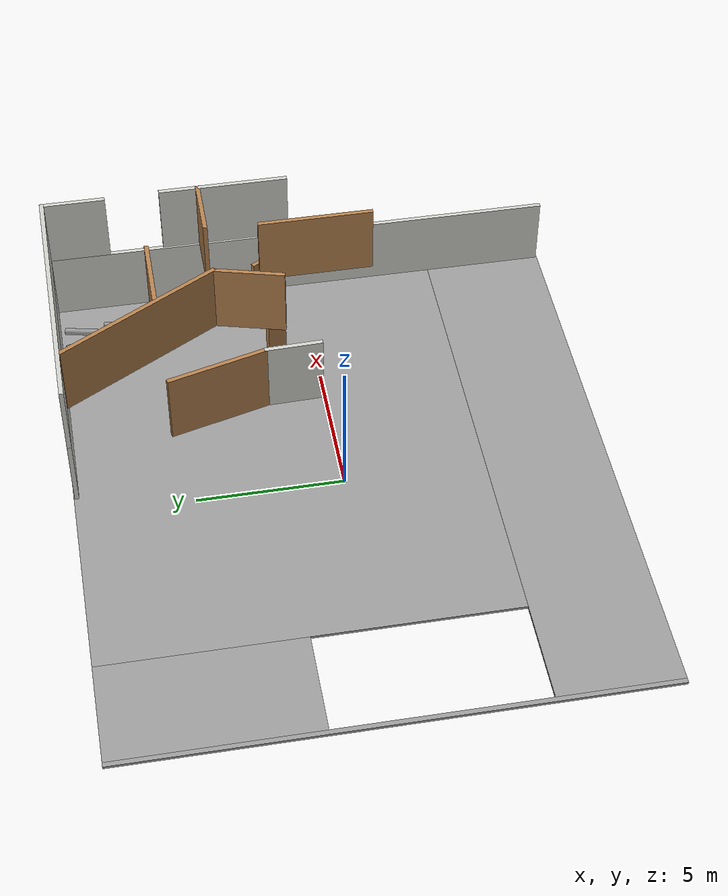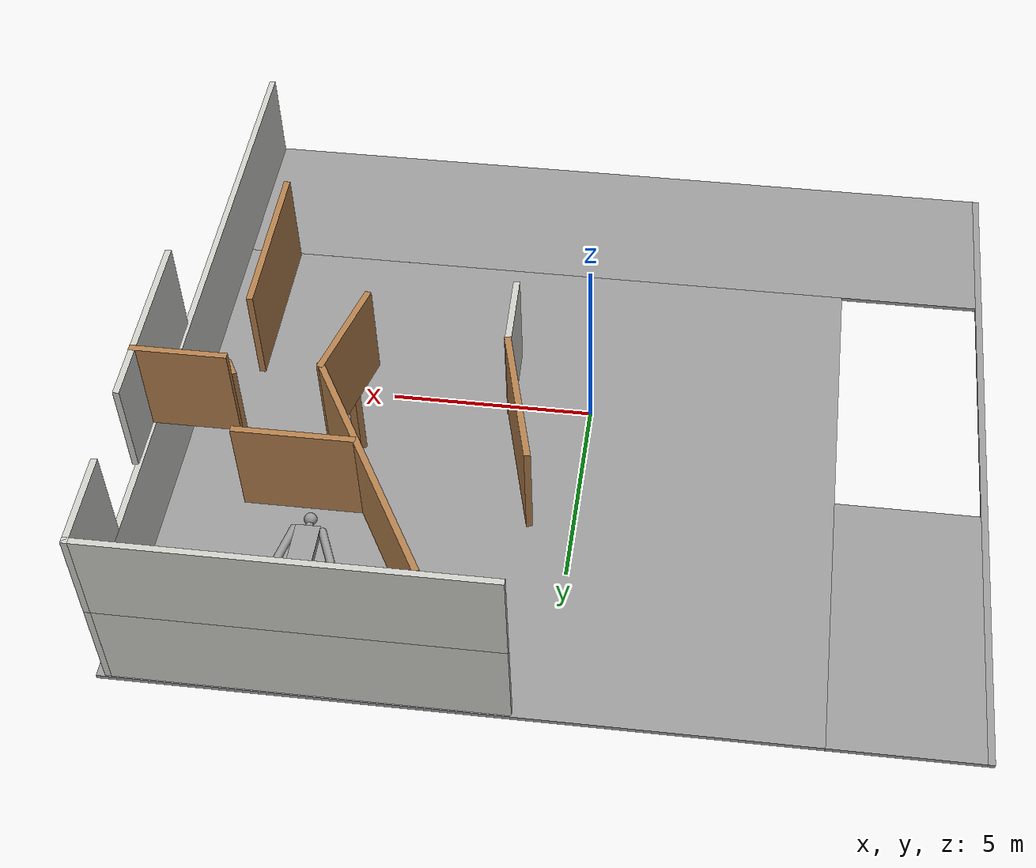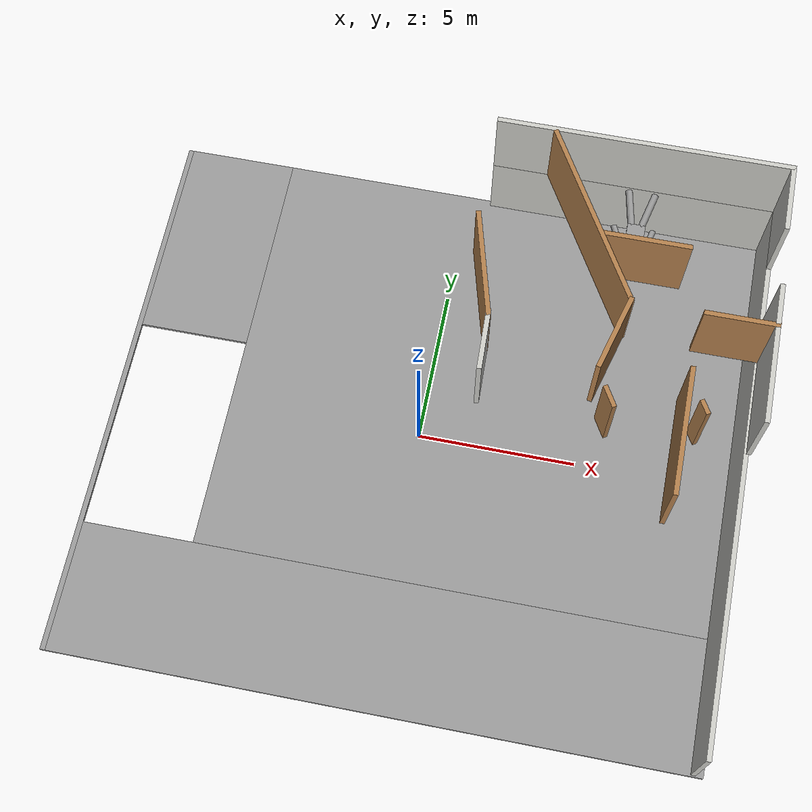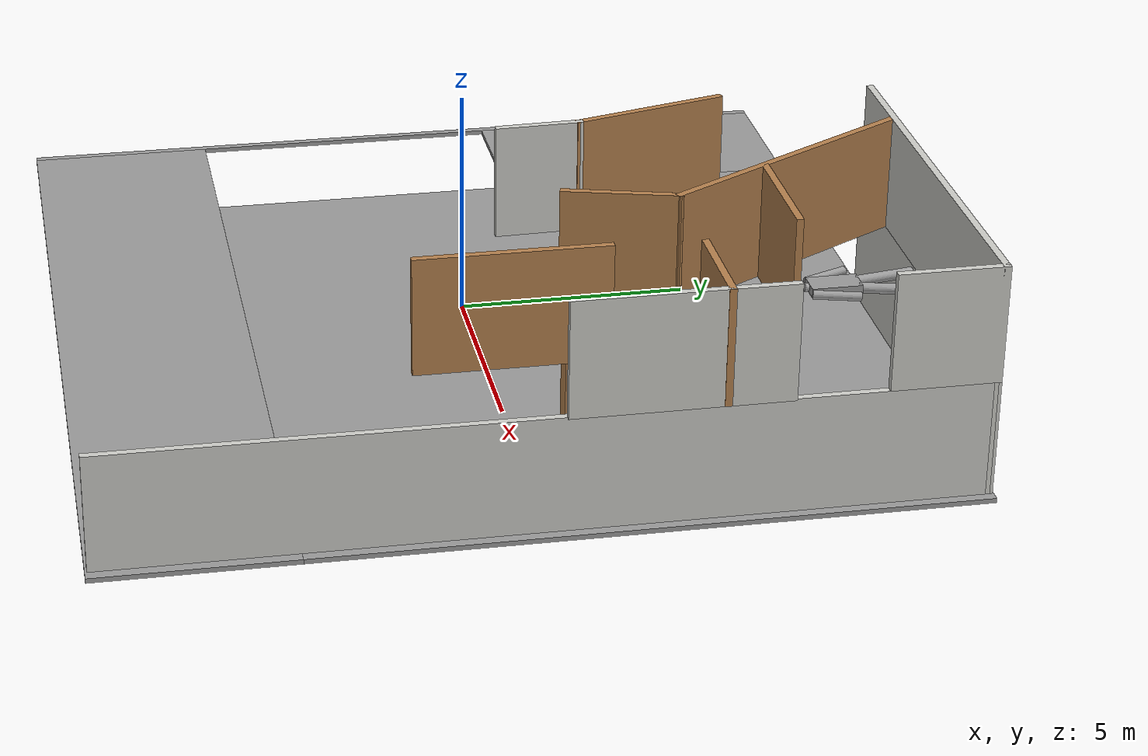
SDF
<sdf version="1.6">
 <model name="home_human">
  <link name="Floor_1_clone">
   <pose>0.151523 0.015351 -0.092874 0 -0 0</pose>
   <visual name="Floor_1_Visual_2">
    <pose>1.84664 2.07713 0.05 0 -0 0</pose>
    <geometry><box><size>16.4027 13.8033 0.1</size></box></geometry>
    <material>
     <script><uri>file://media/materials/scripts/gazebo.material</uri><name>Gazebo/Grey</name></script>
     <ambient>1 1 1 1</ambient>
     <shader type="pixel"/>
    </material>
    <meta><layer>1</layer></meta>
   </visual>
   <visual name="Floor_1_Visual_0">
    <pose>-9.96633 0 0.05 0 -0 0</pose>
    <geometry><box><size>0.163285 17.9576 0.1</size></box></geometry>
    <material>
     <script><uri>file://media/materials/scripts/gazebo.material</uri><name>Gazebo/Grey</name></script>
     <ambient>1 1 1 1</ambient>
     <shader type="pixel"/>
    </material>
    <meta><layer>1</layer></meta>
   </visual>
   <visual name="Floor_1_Visual_3">
    <pose>-8.11969 5.56778 0.05 0 -0 0</pose>
    <geometry><box><size>3.53 6.82204 0.1</size></box></geometry>
    <material>
     <script><uri>file://media/materials/scripts/gazebo.material</uri><name>Gazebo/Grey</name></script>
     <ambient>1 1 1 1</ambient>
     <shader type="pixel"/>
    </material>
    <meta><layer>1</layer></meta>
   </visual>
   <visual name="Floor_1_Visual_1">
    <pose>0.081642 -6.90167 0.05 0 -0 0</pose>
    <geometry><box><size>19.9327 4.15425 0.1</size></box></geometry>
    <material>
     <script><uri>file://media/materials/scripts/gazebo.material</uri><name>Gazebo/Grey</name></script>
     <ambient>1 1 1 1</ambient>
     <shader type="pixel"/>
    </material>
    <meta><layer>1</layer></meta>
   </visual>
   <collision name="Floor_1_Collision_2">
    <pose>1.84664 2.07713 0.05 0 -0 0</pose>
    <geometry><box><size>16.4027 13.8033 0.1</size></box></geometry>
    <surface>
     <friction>
      <ode><mu>1</mu><mu2>1</mu2><fdir1>0 0 0</fdir1><slip1>0</slip1><slip2>0</slip2></ode>
      <torsional>
       <coefficient>1</coefficient>
       <patch_radius>0</patch_radius>
       <surface_radius>0</surface_radius>
       <use_patch_radius>1</use_patch_radius>
       <ode><slip>0</slip></ode>
      </torsional>
     </friction>
     <bounce><restitution_coefficient>0</restitution_coefficient><threshold>1e+06</threshold></bounce>
     <contact>
      <collide_without_contact>0</collide_without_contact>
      <collide_without_contact_bitmask>1</collide_without_contact_bitmask>
      <collide_bitmask>1</collide_bitmask>
      <ode>
       <soft_cfm>0</soft_cfm>
       <soft_erp>0.2</soft_erp>
       <kp>1e+13</kp>
       <kd>1</kd>
       <max_vel>0.01</max_vel>
       <min_depth>0</min_depth>
      </ode>
      <bullet>
       <split_impulse>1</split_impulse>
       <split_impulse_penetration_threshold>-0.01</split_impulse_penetration_threshold>
       <soft_cfm>0</soft_cfm>
       <soft_erp>0.2</soft_erp>
       <kp>1e+13</kp>
       <kd>1</kd>
      </bullet>
     </contact>
    </surface>
   </collision>
   <collision name="Floor_1_Collision_1">
    <pose>0.081642 -6.90167 0.05 0 -0 0</pose>
    <geometry><box><size>19.9327 4.15425 0.1</size></box></geometry>
    <surface>
     <friction>
      <ode><mu>1</mu><mu2>1</mu2><fdir1>0 0 0</fdir1><slip1>0</slip1><slip2>0</slip2></ode>
      <torsional>
       <coefficient>1</coefficient>
       <patch_radius>0</patch_radius>
       <surface_radius>0</surface_radius>
       <use_patch_radius>1</use_patch_radius>
       <ode><slip>0</slip></ode>
      </torsional>
     </friction>
     <bounce><restitution_coefficient>0</restitution_coefficient><threshold>1e+06</threshold></bounce>
     <contact>
      <collide_without_contact>0</collide_without_contact>
      <collide_without_contact_bitmask>1</collide_without_contact_bitmask>
      <collide_bitmask>1</collide_bitmask>
      <ode>
       <soft_cfm>0</soft_cfm>
       <soft_erp>0.2</soft_erp>
       <kp>1e+13</kp>
       <kd>1</kd>
       <max_vel>0.01</max_vel>
       <min_depth>0</min_depth>
      </ode>
      <bullet>
       <split_impulse>1</split_impulse>
       <split_impulse_penetration_threshold>-0.01</split_impulse_penetration_threshold>
       <soft_cfm>0</soft_cfm>
       <soft_erp>0.2</soft_erp>
       <kp>1e+13</kp>
       <kd>1</kd>
      </bullet>
     </contact>
    </surface>
   </collision>
   <collision name="Floor_1_Collision_0">
    <pose>-9.96633 0 0.05 0 -0 0</pose>
    <geometry><box><size>0.163285 17.9576 0.1</size></box></geometry>
    <surface>
     <friction>
      <ode><mu>1</mu><mu2>1</mu2><fdir1>0 0 0</fdir1><slip1>0</slip1><slip2>0</slip2></ode>
      <torsional>
       <coefficient>1</coefficient>
       <patch_radius>0</patch_radius>
       <surface_radius>0</surface_radius>
       <use_patch_radius>1</use_patch_radius>
       <ode><slip>0</slip></ode>
      </torsional>
     </friction>
     <bounce><restitution_coefficient>0</restitution_coefficient><threshold>1e+06</threshold></bounce>
     <contact>
      <collide_without_contact>0</collide_without_contact>
      <collide_without_contact_bitmask>1</collide_without_contact_bitmask>
      <collide_bitmask>1</collide_bitmask>
      <ode>
       <soft_cfm>0</soft_cfm>
       <soft_erp>0.2</soft_erp>
       <kp>1e+13</kp>
       <kd>1</kd>
       <max_vel>0.01</max_vel>
       <min_depth>0</min_depth>
      </ode>
      <bullet>
       <split_impulse>1</split_impulse>
       <split_impulse_penetration_threshold>-0.01</split_impulse_penetration_threshold>
       <soft_cfm>0</soft_cfm>
       <soft_erp>0.2</soft_erp>
       <kp>1e+13</kp>
       <kd>1</kd>
      </bullet>
     </contact>
    </surface>
   </collision>
   <collision name="Floor_1_Collision_3">
    <pose>-8.11969 5.56778 0.05 0 -0 0</pose>
    <geometry><box><size>3.53 6.82204 0.1</size></box></geometry>
    <surface>
     <friction>
      <ode><mu>1</mu><mu2>1</mu2><fdir1>0 0 0</fdir1><slip1>0</slip1><slip2>0</slip2></ode>
      <torsional>
       <coefficient>1</coefficient>
       <patch_radius>0</patch_radius>
       <surface_radius>0</surface_radius>
       <use_patch_radius>1</use_patch_radius>
       <ode><slip>0</slip></ode>
      </torsional>
     </friction>
     <bounce><restitution_coefficient>0</restitution_coefficient><threshold>1e+06</threshold></bounce>
     <contact>
      <collide_without_contact>0</collide_without_contact>
      <collide_without_contact_bitmask>1</collide_without_contact_bitmask>
      <collide_bitmask>1</collide_bitmask>
      <ode>
       <soft_cfm>0</soft_cfm>
       <soft_erp>0.2</soft_erp>
       <kp>1e+13</kp>
       <kd>1</kd>
       <max_vel>0.01</max_vel>
       <min_depth>0</min_depth>
      </ode>
      <bullet>
       <split_impulse>1</split_impulse>
       <split_impulse_penetration_threshold>-0.01</split_impulse_penetration_threshold>
       <soft_cfm>0</soft_cfm>
       <soft_erp>0.2</soft_erp>
       <kp>1e+13</kp>
       <kd>1</kd>
      </bullet>
     </contact>
    </surface>
   </collision>
  </link>
  <link name="Wall_101">
   <pose>1.19673 3.87559 2.5 0 0 -1.30902</pose>
   <visual name="Wall_101_Visual">
    <pose>0 0 1.25 0 -0 0</pose>
    <geometry><box><size>3.5 0.15 2.5</size></box></geometry>
    <material>
     <script><uri>file://media/materials/scripts/gazebo.material</uri><name>Gazebo/Wood</name></script>
     <ambient>1 1 1 1</ambient>
     <shader type="pixel"/>
    </material>
    <meta><layer>1</layer></meta>
   </visual>
   <collision name="Wall_101_Collision">
    <pose>0 0 1.25 0 -0 0</pose>
    <geometry><box><size>3.5 0.15 2.5</size></box></geometry>
    <surface>
     <friction>
      <ode><mu>1</mu><mu2>1</mu2><fdir1>0 0 0</fdir1><slip1>0</slip1><slip2>0</slip2></ode>
      <torsional>
       <coefficient>1</coefficient>
       <patch_radius>0</patch_radius>
       <surface_radius>0</surface_radius>
       <use_patch_radius>1</use_patch_radius>
       <ode><slip>0</slip></ode>
      </torsional>
     </friction>
     <bounce><restitution_coefficient>0</restitution_coefficient><threshold>1e+06</threshold></bounce>
     <contact>
      <collide_without_contact>0</collide_without_contact>
      <collide_without_contact_bitmask>1</collide_without_contact_bitmask>
      <collide_bitmask>1</collide_bitmask>
      <ode>
       <soft_cfm>0</soft_cfm>
       <soft_erp>0.2</soft_erp>
       <kp>1e+13</kp>
       <kd>1</kd>
       <max_vel>0.01</max_vel>
       <min_depth>0</min_depth>
      </ode>
      <bullet>
       <split_impulse>1</split_impulse>
       <split_impulse_penetration_threshold>-0.01</split_impulse_penetration_threshold>
       <soft_cfm>0</soft_cfm>
       <soft_erp>0.2</soft_erp>
       <kp>1e+13</kp>
       <kd>1</kd>
      </bullet>
     </contact>
    </surface>
   </collision>
  </link>
  <link name="Wall_105">
   <pose>9.92223 7.84259 2.5 0 0 -1.5708</pose>
   <visual name="Wall_105_Visual">
    <pose>0 0 1.25 0 -0 0</pose>
    <geometry><box><size>2.25 0.15 2.5</size></box></geometry>
    <material>
     <script><uri>file://media/materials/scripts/gazebo.material</uri><name>Gazebo/CeilingTiled</name></script>
     <ambient>1 1 1 1</ambient>
     <shader type="pixel"/>
    </material>
    <meta><layer>1</layer></meta>
   </visual>
   <collision name="Wall_105_Collision">
    <pose>0 0 1.25 0 -0 0</pose>
    <geometry><box><size>2.25 0.15 2.5</size></box></geometry>
    <surface>
     <friction>
      <ode><mu>1</mu><mu2>1</mu2><fdir1>0 0 0</fdir1><slip1>0</slip1><slip2>0</slip2></ode>
      <torsional>
       <coefficient>1</coefficient>
       <patch_radius>0</patch_radius>
       <surface_radius>0</surface_radius>
       <use_patch_radius>1</use_patch_radius>
       <ode><slip>0</slip></ode>
      </torsional>
     </friction>
     <bounce><restitution_coefficient>0</restitution_coefficient><threshold>1e+06</threshold></bounce>
     <contact>
      <collide_without_contact>0</collide_without_contact>
      <collide_without_contact_bitmask>1</collide_without_contact_bitmask>
      <collide_bitmask>1</collide_bitmask>
      <ode>
       <soft_cfm>0</soft_cfm>
       <soft_erp>0.2</soft_erp>
       <kp>1e+13</kp>
       <kd>1</kd>
       <max_vel>0.01</max_vel>
       <min_depth>0</min_depth>
      </ode>
      <bullet>
       <split_impulse>1</split_impulse>
       <split_impulse_penetration_threshold>-0.01</split_impulse_penetration_threshold>
       <soft_cfm>0</soft_cfm>
       <soft_erp>0.2</soft_erp>
       <kp>1e+13</kp>
       <kd>1</kd>
      </bullet>
     </contact>
    </surface>
   </collision>
  </link>
  <link name="Wall_111">
   <pose>9.98623 2.58859 2.5 0 -0 1.5708</pose>
   <visual name="Wall_111_Visual">
    <pose>0 0 1.25 0 -0 0</pose>
    <geometry><box><size>4.5 0.15 2.5</size></box></geometry>
    <material>
     <script><uri>file://media/materials/scripts/gazebo.material</uri><name>Gazebo/CeilingTiled</name></script>
     <ambient>1 1 1 1</ambient>
     <shader type="pixel"/>
    </material>
    <meta><layer>1</layer></meta>
   </visual>
   <collision name="Wall_111_Collision">
    <pose>0 0 1.25 0 -0 0</pose>
    <geometry><box><size>4.5 0.15 2.5</size></box></geometry>
    <surface>
     <friction>
      <ode><mu>1</mu><mu2>1</mu2><fdir1>0 0 0</fdir1><slip1>0</slip1><slip2>0</slip2></ode>
      <torsional>
       <coefficient>1</coefficient>
       <patch_radius>0</patch_radius>
       <surface_radius>0</surface_radius>
       <use_patch_radius>1</use_patch_radius>
       <ode><slip>0</slip></ode>
      </torsional>
     </friction>
     <bounce><restitution_coefficient>0</restitution_coefficient><threshold>1e+06</threshold></bounce>
     <contact>
      <collide_without_contact>0</collide_without_contact>
      <collide_without_contact_bitmask>1</collide_without_contact_bitmask>
      <collide_bitmask>1</collide_bitmask>
      <ode>
       <soft_cfm>0</soft_cfm>
       <soft_erp>0.2</soft_erp>
       <kp>1e+13</kp>
       <kd>1</kd>
       <max_vel>0.01</max_vel>
       <min_depth>0</min_depth>
      </ode>
      <bullet>
       <split_impulse>1</split_impulse>
       <split_impulse_penetration_threshold>-0.01</split_impulse_penetration_threshold>
       <soft_cfm>0</soft_cfm>
       <soft_erp>0.2</soft_erp>
       <kp>1e+13</kp>
       <kd>1</kd>
      </bullet>
     </contact>
    </surface>
   </collision>
  </link>
  <link name="Wall_113">
   <pose>4.14423 6.13197 2.5 0 0 -1.0472</pose>
   <visual name="Wall_113_Visual">
    <pose>0 0 1.25 0 -0 0</pose>
    <geometry><box><size>6.25 0.15 2.5</size></box></geometry>
    <material>
     <script><uri>file://media/materials/scripts/gazebo.material</uri><name>Gazebo/Wood</name></script>
     <ambient>1 1 1 1</ambient>
     <shader type="pixel"/>
    </material>
    <meta><layer>1</layer></meta>
   </visual>
   <collision name="Wall_113_Collision">
    <pose>0 0 1.25 0 -0 0</pose>
    <geometry><box><size>6.25 0.15 2.5</size></box></geometry>
    <surface>
     <friction>
      <ode><mu>1</mu><mu2>1</mu2><fdir1>0 0 0</fdir1><slip1>0</slip1><slip2>0</slip2></ode>
      <torsional>
       <coefficient>1</coefficient>
       <patch_radius>0</patch_radius>
       <surface_radius>0</surface_radius>
       <use_patch_radius>1</use_patch_radius>
       <ode><slip>0</slip></ode>
      </torsional>
     </friction>
     <bounce><restitution_coefficient>0</restitution_coefficient><threshold>1e+06</threshold></bounce>
     <contact>
      <collide_without_contact>0</collide_without_contact>
      <collide_without_contact_bitmask>1</collide_without_contact_bitmask>
      <collide_bitmask>1</collide_bitmask>
      <ode>
       <soft_cfm>0</soft_cfm>
       <soft_erp>0.2</soft_erp>
       <kp>1e+13</kp>
       <kd>1</kd>
       <max_vel>0.01</max_vel>
       <min_depth>0</min_depth>
      </ode>
      <bullet>
       <split_impulse>1</split_impulse>
       <split_impulse_penetration_threshold>-0.01</split_impulse_penetration_threshold>
       <soft_cfm>0</soft_cfm>
       <soft_erp>0.2</soft_erp>
       <kp>1e+13</kp>
       <kd>1</kd>
      </bullet>
     </contact>
    </surface>
   </collision>
  </link>
  <link name="Wall_114">
   <pose>5.36523 2.35559 2.5 0 0 -1.83249</pose>
   <visual name="Wall_114_Visual">
    <pose>0 0 1.25 0 -0 0</pose>
    <geometry><box><size>2.5 0.15 2.5</size></box></geometry>
    <material>
     <script><uri>file://media/materials/scripts/gazebo.material</uri><name>Gazebo/Wood</name></script>
     <ambient>1 1 1 1</ambient>
     <shader type="pixel"/>
    </material>
    <meta><layer>1</layer></meta>
   </visual>
   <collision name="Wall_114_Collision">
    <pose>0 0 1.25 0 -0 0</pose>
    <geometry><box><size>2.5 0.15 2.5</size></box></geometry>
    <surface>
     <friction>
      <ode><mu>1</mu><mu2>1</mu2><fdir1>0 0 0</fdir1><slip1>0</slip1><slip2>0</slip2></ode>
      <torsional>
       <coefficient>1</coefficient>
       <patch_radius>0</patch_radius>
       <surface_radius>0</surface_radius>
       <use_patch_radius>1</use_patch_radius>
       <ode><slip>0</slip></ode>
      </torsional>
     </friction>
     <bounce><restitution_coefficient>0</restitution_coefficient><threshold>1e+06</threshold></bounce>
     <contact>
      <collide_without_contact>0</collide_without_contact>
      <collide_without_contact_bitmask>1</collide_without_contact_bitmask>
      <collide_bitmask>1</collide_bitmask>
      <ode>
       <soft_cfm>0</soft_cfm>
       <soft_erp>0.2</soft_erp>
       <kp>1e+13</kp>
       <kd>1</kd>
       <max_vel>0.01</max_vel>
       <min_depth>0</min_depth>
      </ode>
      <bullet>
       <split_impulse>1</split_impulse>
       <split_impulse_penetration_threshold>-0.01</split_impulse_penetration_threshold>
       <soft_cfm>0</soft_cfm>
       <soft_erp>0.2</soft_erp>
       <kp>1e+13</kp>
       <kd>1</kd>
      </bullet>
     </contact>
    </surface>
   </collision>
  </link>
  <link name="Wall_119">
   <pose>8.94223 3.47659 2.5 0 -0 0</pose>
   <visual name="Wall_119_Visual">
    <pose>0 0 1.25 0 -0 0</pose>
    <geometry><box><size>2.25 0.15 2.5</size></box></geometry>
    <material>
     <script><uri>file://media/materials/scripts/gazebo.material</uri><name>Gazebo/Wood</name></script>
     <ambient>1 1 1 1</ambient>
     <shader type="pixel"/>
    </material>
    <meta><layer>1</layer></meta>
   </visual>
   <collision name="Wall_119_Collision">
    <pose>0 0 1.25 0 -0 0</pose>
    <geometry><box><size>2.25 0.15 2.5</size></box></geometry>
    <surface>
     <friction>
      <ode><mu>1</mu><mu2>1</mu2><fdir1>0 0 0</fdir1><slip1>0</slip1><slip2>0</slip2></ode>
      <torsional>
       <coefficient>1</coefficient>
       <patch_radius>0</patch_radius>
       <surface_radius>0</surface_radius>
       <use_patch_radius>1</use_patch_radius>
       <ode><slip>0</slip></ode>
      </torsional>
     </friction>
     <bounce><restitution_coefficient>0</restitution_coefficient><threshold>1e+06</threshold></bounce>
     <contact>
      <collide_without_contact>0</collide_without_contact>
      <collide_without_contact_bitmask>1</collide_without_contact_bitmask>
      <collide_bitmask>1</collide_bitmask>
      <ode>
       <soft_cfm>0</soft_cfm>
       <soft_erp>0.2</soft_erp>
       <kp>1e+13</kp>
       <kd>1</kd>
       <max_vel>0.01</max_vel>
       <min_depth>0</min_depth>
      </ode>
      <bullet>
       <split_impulse>1</split_impulse>
       <split_impulse_penetration_threshold>-0.01</split_impulse_penetration_threshold>
       <soft_cfm>0</soft_cfm>
       <soft_erp>0.2</soft_erp>
       <kp>1e+13</kp>
       <kd>1</kd>
      </bullet>
     </contact>
    </surface>
   </collision>
  </link>
  <link name="Wall_124">
   <pose>5.85856 5.54987 2.5 0 -0 0</pose>
   <visual name="Wall_124_Visual">
    <pose>0 0 1.25 0 -0 0</pose>
    <geometry><box><size>2.75 0.15 2.5</size></box></geometry>
    <material>
     <script><uri>file://media/materials/scripts/gazebo.material</uri><name>Gazebo/Wood</name></script>
     <ambient>1 1 1 1</ambient>
     <shader type="pixel"/>
    </material>
    <meta><layer>1</layer></meta>
   </visual>
   <collision name="Wall_124_Collision">
    <pose>0 0 1.25 0 -0 0</pose>
    <geometry><box><size>2.75 0.15 2.5</size></box></geometry>
    <surface>
     <friction>
      <ode><mu>1</mu><mu2>1</mu2><fdir1>0 0 0</fdir1><slip1>0</slip1><slip2>0</slip2></ode>
      <torsional>
       <coefficient>1</coefficient>
       <patch_radius>0</patch_radius>
       <surface_radius>0</surface_radius>
       <use_patch_radius>1</use_patch_radius>
       <ode><slip>0</slip></ode>
      </torsional>
     </friction>
     <bounce><restitution_coefficient>0</restitution_coefficient><threshold>1e+06</threshold></bounce>
     <contact>
      <collide_without_contact>0</collide_without_contact>
      <collide_without_contact_bitmask>1</collide_without_contact_bitmask>
      <collide_bitmask>1</collide_bitmask>
      <ode>
       <soft_cfm>0</soft_cfm>
       <soft_erp>0.2</soft_erp>
       <kp>1e+13</kp>
       <kd>1</kd>
       <max_vel>0.01</max_vel>
       <min_depth>0</min_depth>
      </ode>
      <bullet>
       <split_impulse>1</split_impulse>
       <split_impulse_penetration_threshold>-0.01</split_impulse_penetration_threshold>
       <soft_cfm>0</soft_cfm>
       <soft_erp>0.2</soft_erp>
       <kp>1e+13</kp>
       <kd>1</kd>
      </bullet>
     </contact>
    </surface>
   </collision>
  </link>
  <link name="Wall_131">
   <pose>7.72167 -0.313246 2.5 0 -0 1.5708</pose>
   <visual name="Wall_131_Visual">
    <pose>0 0 1.25 0 -0 0</pose>
    <geometry><box><size>4 0.15 2.5</size></box></geometry>
    <material>
     <script><uri>file://media/materials/scripts/gazebo.material</uri><name>Gazebo/Wood</name></script>
     <ambient>1 1 1 1</ambient>
     <shader type="pixel"/>
    </material>
    <meta><layer>1</layer></meta>
   </visual>
   <collision name="Wall_131_Collision">
    <pose>0 0 1.25 0 -0 0</pose>
    <geometry><box><size>4 0.15 2.5</size></box></geometry>
    <surface>
     <friction>
      <ode><mu>1</mu><mu2>1</mu2><fdir1>0 0 0</fdir1><slip1>0</slip1><slip2>0</slip2></ode>
      <torsional>
       <coefficient>1</coefficient>
       <patch_radius>0</patch_radius>
       <surface_radius>0</surface_radius>
       <use_patch_radius>1</use_patch_radius>
       <ode><slip>0</slip></ode>
      </torsional>
     </friction>
     <bounce><restitution_coefficient>0</restitution_coefficient><threshold>1e+06</threshold></bounce>
     <contact>
      <collide_without_contact>0</collide_without_contact>
      <collide_without_contact_bitmask>1</collide_without_contact_bitmask>
      <collide_bitmask>1</collide_bitmask>
      <ode>
       <soft_cfm>0</soft_cfm>
       <soft_erp>0.2</soft_erp>
       <kp>1e+13</kp>
       <kd>1</kd>
       <max_vel>0.01</max_vel>
       <min_depth>0</min_depth>
      </ode>
      <bullet>
       <split_impulse>1</split_impulse>
       <split_impulse_penetration_threshold>-0.01</split_impulse_penetration_threshold>
       <soft_cfm>0</soft_cfm>
       <soft_erp>0.2</soft_erp>
       <kp>1e+13</kp>
       <kd>1</kd>
      </bullet>
     </contact>
    </surface>
   </collision>
  </link>
  <link name="Wall_22">
   <pose>9.90823 0.023593 0 0 -0 1.56922</pose>
   <visual name="Wall_22_Visual">
    <pose>0 0 1.25 0 -0 0</pose>
    <geometry><box><size>17.8889 0.15 2.5</size></box></geometry>
    <material>
     <script><uri>file://media/materials/scripts/gazebo.material</uri><name>Gazebo/CeilingTiled</name></script>
     <ambient>1 1 1 1</ambient>
     <shader type="pixel"/>
    </material>
    <meta><layer>0</layer></meta>
   </visual>
   <collision name="Wall_22_Collision">
    <pose>0 0 1.25 0 -0 0</pose>
    <geometry><box><size>17.8889 0.15 2.5</size></box></geometry>
    <surface>
     <friction>
      <ode><mu>1</mu><mu2>1</mu2><fdir1>0 0 0</fdir1><slip1>0</slip1><slip2>0</slip2></ode>
      <torsional>
       <coefficient>1</coefficient>
       <patch_radius>0</patch_radius>
       <surface_radius>0</surface_radius>
       <use_patch_radius>1</use_patch_radius>
       <ode><slip>0</slip></ode>
      </torsional>
     </friction>
     <bounce><restitution_coefficient>0</restitution_coefficient><threshold>1e+06</threshold></bounce>
     <contact>
      <collide_without_contact>0</collide_without_contact>
      <collide_without_contact_bitmask>1</collide_without_contact_bitmask>
      <collide_bitmask>1</collide_bitmask>
      <ode>
       <soft_cfm>0</soft_cfm>
       <soft_erp>0.2</soft_erp>
       <kp>1e+13</kp>
       <kd>1</kd>
       <max_vel>0.01</max_vel>
       <min_depth>0</min_depth>
      </ode>
      <bullet>
       <split_impulse>1</split_impulse>
       <split_impulse_penetration_threshold>-0.01</split_impulse_penetration_threshold>
       <soft_cfm>0</soft_cfm>
       <soft_erp>0.2</soft_erp>
       <kp>1e+13</kp>
       <kd>1</kd>
      </bullet>
     </contact>
    </surface>
   </collision>
  </link>
  <link name="Wall_23">
   <pose>5.37223 8.89259 0 0 -0 3.14159</pose>
   <visual name="Wall_23_Visual">
    <pose>0 0 1.25 0 -0 0</pose>
    <geometry><box><size>9.25 0.15 2.5</size></box></geometry>
    <material>
     <script><uri>file://media/materials/scripts/gazebo.material</uri><name>Gazebo/CeilingTiled</name></script>
     <ambient>1 1 1 1</ambient>
     <shader type="pixel"/>
    </material>
    <meta><layer>0</layer></meta>
   </visual>
   <collision name="Wall_23_Collision">
    <pose>0 0 1.25 0 -0 0</pose>
    <geometry><box><size>9.25 0.15 2.5</size></box></geometry>
    <surface>
     <friction>
      <ode><mu>1</mu><mu2>1</mu2><fdir1>0 0 0</fdir1><slip1>0</slip1><slip2>0</slip2></ode>
      <torsional>
       <coefficient>1</coefficient>
       <patch_radius>0</patch_radius>
       <surface_radius>0</surface_radius>
       <use_patch_radius>1</use_patch_radius>
       <ode><slip>0</slip></ode>
      </torsional>
     </friction>
     <bounce><restitution_coefficient>0</restitution_coefficient><threshold>1e+06</threshold></bounce>
     <contact>
      <collide_without_contact>0</collide_without_contact>
      <collide_without_contact_bitmask>1</collide_without_contact_bitmask>
      <collide_bitmask>1</collide_bitmask>
      <ode>
       <soft_cfm>0</soft_cfm>
       <soft_erp>0.2</soft_erp>
       <kp>1e+13</kp>
       <kd>1</kd>
       <max_vel>0.01</max_vel>
       <min_depth>0</min_depth>
      </ode>
      <bullet>
       <split_impulse>1</split_impulse>
       <split_impulse_penetration_threshold>-0.01</split_impulse_penetration_threshold>
       <soft_cfm>0</soft_cfm>
       <soft_erp>0.2</soft_erp>
       <kp>1e+13</kp>
       <kd>1</kd>
      </bullet>
     </contact>
    </surface>
   </collision>
  </link>
  <link name="Wall_45">
   <pose>5.63998 1.4343 0 0 -0 2.09491</pose>
   <visual name="Wall_45_Visual">
    <pose>0 0 1.25 0 -0 0</pose>
    <geometry><box><size>0.749467 0.15 2.5</size></box></geometry>
    <material>
     <script><uri>file://media/materials/scripts/gazebo.material</uri><name>Gazebo/Wood</name></script>
     <ambient>1 1 1 1</ambient>
     <shader type="pixel"/>
    </material>
    <meta><layer>0</layer></meta>
   </visual>
   <collision name="Wall_45_Collision">
    <pose>0 0 1.25 0 -0 0</pose>
    <geometry><box><size>0.749467 0.15 2.5</size></box></geometry>
    <surface>
     <friction>
      <ode><mu>1</mu><mu2>1</mu2><fdir1>0 0 0</fdir1><slip1>0</slip1><slip2>0</slip2></ode>
      <torsional>
       <coefficient>1</coefficient>
       <patch_radius>0</patch_radius>
       <surface_radius>0</surface_radius>
       <use_patch_radius>1</use_patch_radius>
       <ode><slip>0</slip></ode>
      </torsional>
     </friction>
     <bounce><restitution_coefficient>0</restitution_coefficient><threshold>1e+06</threshold></bounce>
     <contact>
      <collide_without_contact>0</collide_without_contact>
      <collide_without_contact_bitmask>1</collide_without_contact_bitmask>
      <collide_bitmask>1</collide_bitmask>
      <ode>
       <soft_cfm>0</soft_cfm>
       <soft_erp>0.2</soft_erp>
       <kp>1e+13</kp>
       <kd>1</kd>
       <max_vel>0.01</max_vel>
       <min_depth>0</min_depth>
      </ode>
      <bullet>
       <split_impulse>1</split_impulse>
       <split_impulse_penetration_threshold>-0.01</split_impulse_penetration_threshold>
       <soft_cfm>0</soft_cfm>
       <soft_erp>0.2</soft_erp>
       <kp>1e+13</kp>
       <kd>1</kd>
      </bullet>
     </contact>
    </surface>
   </collision>
  </link>
  <link name="Wall_57">
   <pose>8.53473 1.63509 0 0 0 -1.04704</pose>
   <visual name="Wall_57_Visual">
    <pose>0 0 1.25 0 -0 0</pose>
    <geometry><box><size>0.5 0.15 2.5</size></box></geometry>
    <material>
     <script><uri>file://media/materials/scripts/gazebo.material</uri><name>Gazebo/Wood</name></script>
     <ambient>1 1 1 1</ambient>
     <shader type="pixel"/>
    </material>
    <meta><layer>0</layer></meta>
   </visual>
   <collision name="Wall_57_Collision">
    <pose>0 0 1.25 0 -0 0</pose>
    <geometry><box><size>0.5 0.15 2.5</size></box></geometry>
    <surface>
     <friction>
      <ode><mu>1</mu><mu2>1</mu2><fdir1>0 0 0</fdir1><slip1>0</slip1><slip2>0</slip2></ode>
      <torsional>
       <coefficient>1</coefficient>
       <patch_radius>0</patch_radius>
       <surface_radius>0</surface_radius>
       <use_patch_radius>1</use_patch_radius>
       <ode><slip>0</slip></ode>
      </torsional>
     </friction>
     <bounce><restitution_coefficient>0</restitution_coefficient><threshold>1e+06</threshold></bounce>
     <contact>
      <collide_without_contact>0</collide_without_contact>
      <collide_without_contact_bitmask>1</collide_without_contact_bitmask>
      <collide_bitmask>1</collide_bitmask>
      <ode>
       <soft_cfm>0</soft_cfm>
       <soft_erp>0.2</soft_erp>
       <kp>1e+13</kp>
       <kd>1</kd>
       <max_vel>0.01</max_vel>
       <min_depth>0</min_depth>
      </ode>
      <bullet>
       <split_impulse>1</split_impulse>
       <split_impulse_penetration_threshold>-0.01</split_impulse_penetration_threshold>
       <soft_cfm>0</soft_cfm>
       <soft_erp>0.2</soft_erp>
       <kp>1e+13</kp>
       <kd>1</kd>
      </bullet>
     </contact>
    </surface>
   </collision>
  </link>
  <link name="Wall_65">
   <pose>5.37223 8.89259 2.5 0 -0 3.14159</pose>
   <visual name="Wall_65_Visual">
    <pose>0 0 1.25 0 -0 0</pose>
    <geometry><box><size>9.25 0.15 2.5</size></box></geometry>
    <material>
     <script><uri>file://media/materials/scripts/gazebo.material</uri><name>Gazebo/CeilingTiled</name></script>
     <ambient>1 1 1 1</ambient>
     <shader type="pixel"/>
    </material>
    <meta><layer>1</layer></meta>
   </visual>
   <collision name="Wall_65_Collision">
    <pose>0 0 1.25 0 -0 0</pose>
    <geometry><box><size>9.25 0.15 2.5</size></box></geometry>
    <surface>
     <friction>
      <ode><mu>1</mu><mu2>1</mu2><fdir1>0 0 0</fdir1><slip1>0</slip1><slip2>0</slip2></ode>
      <torsional>
       <coefficient>1</coefficient>
       <patch_radius>0</patch_radius>
       <surface_radius>0</surface_radius>
       <use_patch_radius>1</use_patch_radius>
       <ode><slip>0</slip></ode>
      </torsional>
     </friction>
     <bounce><restitution_coefficient>0</restitution_coefficient><threshold>1e+06</threshold></bounce>
     <contact>
      <collide_without_contact>0</collide_without_contact>
      <collide_without_contact_bitmask>1</collide_without_contact_bitmask>
      <collide_bitmask>1</collide_bitmask>
      <ode>
       <soft_cfm>0</soft_cfm>
       <soft_erp>0.2</soft_erp>
       <kp>1e+13</kp>
       <kd>1</kd>
       <max_vel>0.01</max_vel>
       <min_depth>0</min_depth>
      </ode>
      <bullet>
       <split_impulse>1</split_impulse>
       <split_impulse_penetration_threshold>-0.01</split_impulse_penetration_threshold>
       <soft_cfm>0</soft_cfm>
       <soft_erp>0.2</soft_erp>
       <kp>1e+13</kp>
       <kd>1</kd>
      </bullet>
     </contact>
    </surface>
   </collision>
  </link>
  <link name="Wall_93">
   <pose>1.65623 1.38259 2.5 0 0 -1.54109</pose>
   <visual name="Wall_93_Visual">
    <pose>0 0 1.25 0 -0 0</pose>
    <geometry><box><size>1.90077 0.15 2.5</size></box></geometry>
    <material>
     <script><uri>file://media/materials/scripts/gazebo.material</uri><name>Gazebo/CeilingTiled</name></script>
     <ambient>1 1 1 1</ambient>
     <shader type="pixel"/>
    </material>
    <meta><layer>1</layer></meta>
   </visual>
   <collision name="Wall_93_Collision">
    <pose>0 0 1.25 0 -0 0</pose>
    <geometry><box><size>1.90077 0.15 2.5</size></box></geometry>
    <surface>
     <friction>
      <ode><mu>1</mu><mu2>1</mu2><fdir1>0 0 0</fdir1><slip1>0</slip1><slip2>0</slip2></ode>
      <torsional>
       <coefficient>1</coefficient>
       <patch_radius>0</patch_radius>
       <surface_radius>0</surface_radius>
       <use_patch_radius>1</use_patch_radius>
       <ode><slip>0</slip></ode>
      </torsional>
     </friction>
     <bounce><restitution_coefficient>0</restitution_coefficient><threshold>1e+06</threshold></bounce>
     <contact>
      <collide_without_contact>0</collide_without_contact>
      <collide_without_contact_bitmask>1</collide_without_contact_bitmask>
      <collide_bitmask>1</collide_bitmask>
      <ode>
       <soft_cfm>0</soft_cfm>
       <soft_erp>0.2</soft_erp>
       <kp>1e+13</kp>
       <kd>1</kd>
       <max_vel>0.01</max_vel>
       <min_depth>0</min_depth>
      </ode>
      <bullet>
       <split_impulse>1</split_impulse>
       <split_impulse_penetration_threshold>-0.01</split_impulse_penetration_threshold>
       <soft_cfm>0</soft_cfm>
       <soft_erp>0.2</soft_erp>
       <kp>1e+13</kp>
       <kd>1</kd>
      </bullet>
     </contact>
    </surface>
   </collision>
  </link>
  <model name="human_3">
   <link name="link_2">
    <inertial>
     <mass>0.00274256</mass>
     <inertia>
      <ixx>6.98489e-06</ixx>
      <ixy>0</ixy>
      <ixz>0</ixz>
      <iyy>6.98489e-06</iyy>
      <iyz>0</iyz>
      <izz>9.48338e-06</izz>
     </inertia>
    </inertial>
    <pose>0.004143 -0.698236 0.01353 1.53639 -0.014642 -0.02388</pose>
    <visual name="visual">
     <geometry><cylinder><radius>0.0831608</radius><length>0.0990711</length></cylinder></geometry>
     <material>
      <lighting>1</lighting>
      <script><uri>file://media/materials/scripts/gazebo.material</uri><name>Gazebo/Grey</name></script>
      <shader type="pixel"/>
     </material>
    </visual>
    <collision name="collision">
     <geometry><cylinder><radius>0.083161</radius><length>0.099071</length></cylinder></geometry>
     <surface>
      <friction>
       <ode><mu>1</mu><mu2>1</mu2><fdir1>0 0 0</fdir1><slip1>0</slip1><slip2>0</slip2></ode>
       <torsional>
        <coefficient>1</coefficient>
        <patch_radius>0</patch_radius>
        <surface_radius>0</surface_radius>
        <use_patch_radius>1</use_patch_radius>
        <ode><slip>0</slip></ode>
       </torsional>
      </friction>
      <bounce><restitution_coefficient>0</restitution_coefficient><threshold>1e+06</threshold></bounce>
      <contact>
       <collide_without_contact>0</collide_without_contact>
       <collide_without_contact_bitmask>1</collide_without_contact_bitmask>
       <collide_bitmask>1</collide_bitmask>
       <ode>
        <soft_cfm>0</soft_cfm>
        <soft_erp>0.2</soft_erp>
        <kp>1e+13</kp>
        <kd>1</kd>
        <max_vel>0.01</max_vel>
        <min_depth>0</min_depth>
       </ode>
       <bullet>
        <split_impulse>1</split_impulse>
        <split_impulse_penetration_threshold>-0.01</split_impulse_penetration_threshold>
        <soft_cfm>0</soft_cfm>
        <soft_erp>0.2</soft_erp>
        <kp>1e+13</kp>
        <kd>1</kd>
       </bullet>
      </contact>
     </surface>
    </collision>
   </link>
   <link name="link_3">
    <inertial>
     <mass>0.0260719</mass>
     <inertia>
      <ixx>0.000229246</ixx>
      <ixy>0</ixy>
      <ixz>0</ixz>
      <iyy>0.000229246</iyy>
      <iyz>0</iyz>
      <izz>0.000229246</izz>
     </inertia>
    </inertial>
    <pose>0.008435 -0.870567 0.038148 0 -0 0</pose>
    <visual name="visual">
     <geometry><sphere><radius>0.148263</radius></sphere></geometry>
     <material>
      <lighting>1</lighting>
      <script><uri>file://media/materials/scripts/gazebo.material</uri><name>Gazebo/Grey</name></script>
      <shader type="pixel"/>
     </material>
    </visual>
    <collision name="collision">
     <geometry><sphere><radius>0.148263</radius></sphere></geometry>
     <surface>
      <friction>
       <ode><mu>1</mu><mu2>1</mu2><fdir1>0 0 0</fdir1><slip1>0</slip1><slip2>0</slip2></ode>
       <torsional>
        <coefficient>1</coefficient>
        <patch_radius>0</patch_radius>
        <surface_radius>0</surface_radius>
        <use_patch_radius>1</use_patch_radius>
        <ode><slip>0</slip></ode>
       </torsional>
      </friction>
      <bounce><restitution_coefficient>0</restitution_coefficient><threshold>1e+06</threshold></bounce>
      <contact>
       <collide_without_contact>0</collide_without_contact>
       <collide_without_contact_bitmask>1</collide_without_contact_bitmask>
       <collide_bitmask>1</collide_bitmask>
       <ode>
        <soft_cfm>0</soft_cfm>
        <soft_erp>0.2</soft_erp>
        <kp>1e+13</kp>
        <kd>1</kd>
        <max_vel>0.01</max_vel>
        <min_depth>0</min_depth>
       </ode>
       <bullet>
        <split_impulse>1</split_impulse>
        <split_impulse_penetration_threshold>-0.01</split_impulse_penetration_threshold>
        <soft_cfm>0</soft_cfm>
        <soft_erp>0.2</soft_erp>
        <kp>1e+13</kp>
        <kd>1</kd>
       </bullet>
      </contact>
     </surface>
    </collision>
   </link>
   <link name="link_4">
    <inertial>
     <mass>0.0350676</mass>
     <inertia>
      <ixx>0.00299916</ixx>
      <ixy>0</ixy>
      <ixz>0</ixz>
      <iyy>0.00299916</iyy>
      <iyz>0</iyz>
      <izz>0.00015373</izz>
     </inertia>
    </inertial>
    <pose>0.43753 -0.16616 -0.011266 1.55407 0.003979 -0.226833</pose>
    <visual name="visual">
     <geometry><cylinder><radius>0.0936358</radius><length>1</length></cylinder></geometry>
     <material>
      <lighting>1</lighting>
      <script><uri>file://media/materials/scripts/gazebo.material</uri><name>Gazebo/Grey</name></script>
      <shader type="pixel"/>
     </material>
    </visual>
    <collision name="collision">
     <geometry><cylinder><radius>0.093636</radius><length>1</length></cylinder></geometry>
     <surface>
      <friction>
       <ode><mu>1</mu><mu2>1</mu2><fdir1>0 0 0</fdir1><slip1>0</slip1><slip2>0</slip2></ode>
       <torsional>
        <coefficient>1</coefficient>
        <patch_radius>0</patch_radius>
        <surface_radius>0</surface_radius>
        <use_patch_radius>1</use_patch_radius>
        <ode><slip>0</slip></ode>
       </torsional>
      </friction>
      <bounce><restitution_coefficient>0</restitution_coefficient><threshold>1e+06</threshold></bounce>
      <contact>
       <collide_without_contact>0</collide_without_contact>
       <collide_without_contact_bitmask>1</collide_without_contact_bitmask>
       <collide_bitmask>1</collide_bitmask>
       <ode>
        <soft_cfm>0</soft_cfm>
        <soft_erp>0.2</soft_erp>
        <kp>1e+13</kp>
        <kd>1</kd>
        <max_vel>0.01</max_vel>
        <min_depth>0</min_depth>
       </ode>
       <bullet>
        <split_impulse>1</split_impulse>
        <split_impulse_penetration_threshold>-0.01</split_impulse_penetration_threshold>
        <soft_cfm>0</soft_cfm>
        <soft_erp>0.2</soft_erp>
        <kp>1e+13</kp>
        <kd>1</kd>
       </bullet>
      </contact>
     </surface>
    </collision>
   </link>
   <link name="link_4_clone">
    <inertial>
     <mass>0.0350676</mass>
     <inertia>
      <ixx>0.00299916</ixx>
      <ixy>0</ixy>
      <ixz>0</ixz>
      <iyy>0.00299916</iyy>
      <iyz>0</iyz>
      <izz>0.00015373</izz>
     </inertia>
    </inertial>
    <pose>-0.497497 -0.16131 -0.011266 1.55968 0.013118 0.407511</pose>
    <visual name="visual">
     <geometry><cylinder><radius>0.0936358</radius><length>1</length></cylinder></geometry>
     <material>
      <lighting>1</lighting>
      <script><uri>file://media/materials/scripts/gazebo.material</uri><name>Gazebo/Grey</name></script>
      <shader type="pixel"/>
     </material>
    </visual>
    <collision name="collision">
     <geometry><cylinder><radius>0.093636</radius><length>1</length></cylinder></geometry>
     <surface>
      <friction>
       <ode><mu>1</mu><mu2>1</mu2><fdir1>0 0 0</fdir1><slip1>0</slip1><slip2>0</slip2></ode>
       <torsional>
        <coefficient>1</coefficient>
        <patch_radius>0</patch_radius>
        <surface_radius>0</surface_radius>
        <use_patch_radius>1</use_patch_radius>
        <ode><slip>0</slip></ode>
       </torsional>
      </friction>
      <bounce><restitution_coefficient>0</restitution_coefficient><threshold>1e+06</threshold></bounce>
      <contact>
       <collide_without_contact>0</collide_without_contact>
       <collide_without_contact_bitmask>1</collide_without_contact_bitmask>
       <collide_bitmask>1</collide_bitmask>
       <ode>
        <soft_cfm>0</soft_cfm>
        <soft_erp>0.2</soft_erp>
        <kp>1e+13</kp>
        <kd>1</kd>
        <max_vel>0.01</max_vel>
        <min_depth>0</min_depth>
       </ode>
       <bullet>
        <split_impulse>1</split_impulse>
        <split_impulse_penetration_threshold>-0.01</split_impulse_penetration_threshold>
        <soft_cfm>0</soft_cfm>
        <soft_erp>0.2</soft_erp>
        <kp>1e+13</kp>
        <kd>1</kd>
       </bullet>
      </contact>
     </surface>
    </collision>
   </link>
   <link name="link_4_clone_0">
    <inertial>
     <mass>0.0637493</mass>
     <inertia>
      <ixx>0.00926023</ixx>
      <ixy>0</ixy>
      <ixz>0</ixz>
      <iyy>0.00926023</iyy>
      <iyz>0</iyz>
      <izz>0.000389063</izz>
     </inertia>
    </inertial>
    <pose>0.310843 1.01076 -0.011266 1.55948 0.003979 -0.226833</pose>
    <visual name="visual">
     <geometry><cylinder><radius>0.110481</radius><length>1.30633</length></cylinder></geometry>
     <material>
      <lighting>1</lighting>
      <script><uri>file://media/materials/scripts/gazebo.material</uri><name>Gazebo/Grey</name></script>
      <shader type="pixel"/>
     </material>
    </visual>
    <collision name="collision">
     <geometry><cylinder><radius>0.110481</radius><length>1.30633</length></cylinder></geometry>
     <surface>
      <friction>
       <ode><mu>1</mu><mu2>1</mu2><fdir1>0 0 0</fdir1><slip1>0</slip1><slip2>0</slip2></ode>
       <torsional>
        <coefficient>1</coefficient>
        <patch_radius>0</patch_radius>
        <surface_radius>0</surface_radius>
        <use_patch_radius>1</use_patch_radius>
        <ode><slip>0</slip></ode>
       </torsional>
      </friction>
      <bounce><restitution_coefficient>0</restitution_coefficient><threshold>1e+06</threshold></bounce>
      <contact>
       <collide_without_contact>0</collide_without_contact>
       <collide_without_contact_bitmask>1</collide_without_contact_bitmask>
       <collide_bitmask>1</collide_bitmask>
       <ode>
        <soft_cfm>0</soft_cfm>
        <soft_erp>0.2</soft_erp>
        <kp>1e+13</kp>
        <kd>1</kd>
        <max_vel>0.01</max_vel>
        <min_depth>0</min_depth>
       </ode>
       <bullet>
        <split_impulse>1</split_impulse>
        <split_impulse_penetration_threshold>-0.01</split_impulse_penetration_threshold>
        <soft_cfm>0</soft_cfm>
        <soft_erp>0.2</soft_erp>
        <kp>1e+13</kp>
        <kd>1</kd>
       </bullet>
      </contact>
     </surface>
    </collision>
   </link>
   <link name="link_4_clone_0_clone">
    <inertial>
     <mass>0.0637493</mass>
     <inertia>
      <ixx>0.00926023</ixx>
      <ixy>0</ixy>
      <ixz>0</ixz>
      <iyy>0.00926023</iyy>
      <iyz>0</iyz>
      <izz>0.000389063</izz>
     </inertia>
    </inertial>
    <pose>-0.268402 1.01817 -0.011266 1.56033 0.010391 0.188569</pose>
    <visual name="visual">
     <geometry><cylinder><radius>0.110481</radius><length>1.30633</length></cylinder></geometry>
     <material>
      <lighting>1</lighting>
      <script><uri>file://media/materials/scripts/gazebo.material</uri><name>Gazebo/Grey</name></script>
      <shader type="pixel"/>
     </material>
    </visual>
    <collision name="collision">
     <geometry><cylinder><radius>0.110481</radius><length>1.30633</length></cylinder></geometry>
     <surface>
      <friction>
       <ode><mu>1</mu><mu2>1</mu2><fdir1>0 0 0</fdir1><slip1>0</slip1><slip2>0</slip2></ode>
       <torsional>
        <coefficient>1</coefficient>
        <patch_radius>0</patch_radius>
        <surface_radius>0</surface_radius>
        <use_patch_radius>1</use_patch_radius>
        <ode><slip>0</slip></ode>
       </torsional>
      </friction>
      <bounce><restitution_coefficient>0</restitution_coefficient><threshold>1e+06</threshold></bounce>
      <contact>
       <collide_without_contact>0</collide_without_contact>
       <collide_without_contact_bitmask>1</collide_without_contact_bitmask>
       <collide_bitmask>1</collide_bitmask>
       <ode>
        <soft_cfm>0</soft_cfm>
        <soft_erp>0.2</soft_erp>
        <kp>1e+13</kp>
        <kd>1</kd>
        <max_vel>0.01</max_vel>
        <min_depth>0</min_depth>
       </ode>
       <bullet>
        <split_impulse>1</split_impulse>
        <split_impulse_penetration_threshold>-0.01</split_impulse_penetration_threshold>
        <soft_cfm>0</soft_cfm>
        <soft_erp>0.2</soft_erp>
        <kp>1e+13</kp>
        <kd>1</kd>
       </bullet>
      </contact>
     </surface>
    </collision>
   </link>
   <link name="link_6">
    <inertial>
     <mass>0.119494</mass>
     <inertia>
      <ixx>0.0119192</ixx>
      <ixy>0</ixy>
      <ixz>0</ixz>
      <iyy>0.00354679</iyy>
      <iyz>0</iyz>
      <izz>0.0146928</izz>
     </inertia>
    </inertial>
    <pose>0.010942 -0.116021 0.002669 0 -0 0</pose>
    <visual name="visual">
     <geometry><box><size>0.563349 1.07617 0.197027</size></box></geometry>
     <material>
      <lighting>1</lighting>
      <script><uri>file://media/materials/scripts/gazebo.material</uri><name>Gazebo/Grey</name></script>
      <shader type="pixel"><normal_map>__default__</normal_map></shader>
     </material>
    </visual>
    <collision name="collision">
     <geometry><box><size>0.563349 1.07617 0.197027</size></box></geometry>
     <surface>
      <friction>
       <ode><mu>1</mu><mu2>1</mu2><fdir1>0 0 0</fdir1><slip1>0</slip1><slip2>0</slip2></ode>
       <torsional>
        <coefficient>1</coefficient>
        <patch_radius>0</patch_radius>
        <surface_radius>0</surface_radius>
        <use_patch_radius>1</use_patch_radius>
        <ode><slip>0</slip></ode>
       </torsional>
      </friction>
      <bounce><restitution_coefficient>0</restitution_coefficient><threshold>1e+06</threshold></bounce>
      <contact>
       <collide_without_contact>0</collide_without_contact>
       <collide_without_contact_bitmask>1</collide_without_contact_bitmask>
       <collide_bitmask>1</collide_bitmask>
       <ode>
        <soft_cfm>0</soft_cfm>
        <soft_erp>0.2</soft_erp>
        <kp>1e+13</kp>
        <kd>1</kd>
        <max_vel>0.01</max_vel>
        <min_depth>0</min_depth>
       </ode>
       <bullet>
        <split_impulse>1</split_impulse>
        <split_impulse_penetration_threshold>-0.01</split_impulse_penetration_threshold>
        <soft_cfm>0</soft_cfm>
        <soft_erp>0.2</soft_erp>
        <kp>1e+13</kp>
        <kd>1</kd>
       </bullet>
      </contact>
     </surface>
    </collision>
   </link>
   <static>0</static>
   <pose>5.59533 6.94186 2.6494 0 -0 0</pose>
  </model>
  <static>1</static>
 </model>
</sdf>
